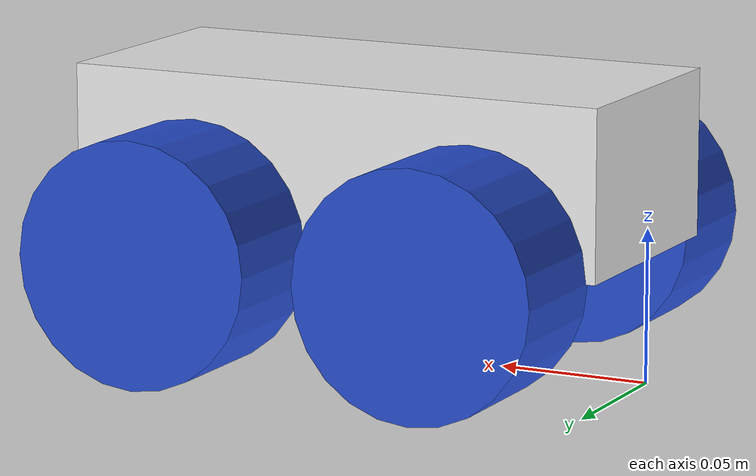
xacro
<?xml version="1.0"?>
<robot xmlns:xacro="http://www.ros.org/wiki/xacro">

    <!-- BASE LINK -->

    <link name="base_link">

    </link>

    <!-- CHASSIS LINK -->

    <joint name="chassis_joint" type="fixed">
        <parent link="base_link"/>
        <child link="chassis"/>
        <origin xyz="0 0 0.0337"/>
    </joint>

    <link name="chassis">
        <visual>
            <origin xyz="0.0915 0 0.0337"/>
            <geometry>
                <box size="0.183 0.0816 0.0548"/>
            </geometry>
            <material name="white"/>
        </visual>
        <collision>
            <origin xyz="0.0915 0 0.0337"/>
            <geometry>
                <box size="0.183 0.0816 0.0548"/>
            </geometry>
        </collision>
        <xacro:inertial_box mass="0.42" x="0.183" y="0.0816" z="0.0548">
            <origin xyz ="0.0915 0 0.0337" rpy="0 0 0"/>
        </xacro:inertial_box>
    </link>

    <!-- LEFT WHEEL LINK -->

    <joint name="left_wheel_joint" type="continuous">
        <parent link="base_link"/>
        <child link="left_wheel"/>
        <origin xyz="0.043 0.0608 0.04" rpy="-${pi/2} 0 0"/>
        <axis xyz="0 0 1"/>
    </joint>

    <link name="left_wheel">
        <visual>
            <geometry>
                <cylinder radius="0.04" length="0.0425"/>
            </geometry>
            <material name="blue"/>
        </visual>
        <collision>
            <geometry>
                <cylinder radius="0.04" length="0.0425"/>
            </geometry>
        </collision>
        <xacro:inertial_cylinder mass="0.11" length="0.0425" radius="0.04">
            <origin xyz="0 0 0" rpy="0 0 0"/>
        </xacro:inertial_cylinder>
    </link>

        <!-- LEFT WHEEL 2 LINK -->

    <joint name="left_wheel2_joint" type="continuous">
        <parent link="base_link"/>
        <child link="left_wheel2"/>
        <origin xyz="0.14 0.0608 0.04" rpy="-${pi/2} 0 0"/>
        <axis xyz="0 0 1"/>
    </joint>

    <link name="left_wheel2">
        <visual>
            <geometry>
                <cylinder radius="0.04" length="0.0425"/>
            </geometry>
            <material name="blue"/>
        </visual>
        <collision>
            <geometry>
                <cylinder radius="0.04" length="0.0425"/>
            </geometry>
        </collision>
        <xacro:inertial_cylinder mass="0.11" length="0.0425" radius="0.04">
            <origin xyz="0 0 0" rpy="0 0 0"/>
        </xacro:inertial_cylinder>
    </link>

    <!-- RIGHT WHEEL LINK -->

    <joint name="right_wheel_joint" type="continuous">
        <parent link="base_link"/>
        <child link="right_wheel"/>
        <origin xyz="0.043 -0.0608 0.04" rpy="${pi/2} 0 0"/>
        <axis xyz="0 0 -1"/>
    </joint>

    <link name="right_wheel">
        <visual>
            <geometry>
                <cylinder radius="0.04" length="0.0425"/>
            </geometry>
            <material name="blue"/>
        </visual>
        <collision>
            <geometry>
                <cylinder radius="0.04" length="0.0425"/>
            </geometry>
        </collision>
        <xacro:inertial_cylinder mass="0.11" length="0.0425" radius="0.04">
            <origin xyz="0 0 0" rpy="0 0 0"/>
        </xacro:inertial_cylinder>
    </link>

        <!-- RIGHT WHEEL 2 LINK -->

    <joint name="right_wheel2_joint" type="continuous">
        <parent link="base_link"/>
        <child link="right_wheel2"/>
        <origin xyz="0.14 -0.0608 0.04" rpy="${pi/2} 0 0"/>
        <axis xyz="0 0 -1"/>
    </joint>

    <link name="right_wheel2">
        <visual>
            <geometry>
                <cylinder radius="0.04" length="0.0425"/>
            </geometry>
            <material name="blue"/>
        </visual>
        <collision>
            <geometry>
                <cylinder radius="0.04" length="0.0425"/>
            </geometry>
        </collision>
        <xacro:inertial_cylinder mass="0.11" length="0.0425" radius="0.04">
            <origin xyz="0 0 0" rpy="0 0 0"/>
        </xacro:inertial_cylinder>
    </link>
</robot>
